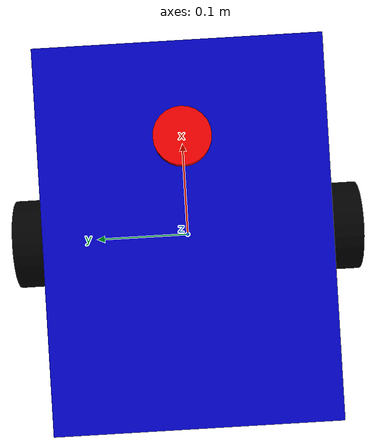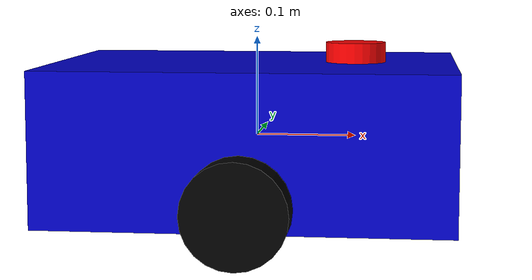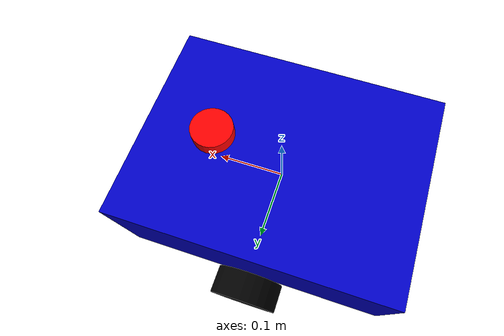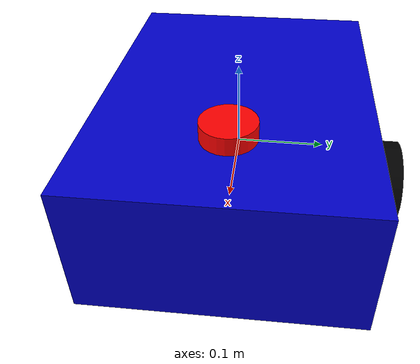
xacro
<?xml version="1.0"?>
<robot name="box_bot" xmlns:xacro="http://www.ros.org/wiki/xacro">
  <xacro:include filename="inertial_macros.xacro"/>
  <xacro:include filename="lidar.xacro"/>

  <link name="base_link"/>

  <joint name="chassis_joint" type="fixed">
    <parent link="base_link"/>
    <child link="chassis"/>
    <origin xyz="0 0 0" rpy="0 0 0"/>
  </joint>

  <link name="chassis">
    <visual>
      <geometry><box size="0.4 0.3 0.15"/></geometry>
      <material name="blue"><color rgba="0 0 0.8 1"/></material>
    </visual>
    <collision>
      <geometry><box size="0.4 0.3 0.15"/></geometry>
    </collision>
    <xacro:inertial_box mass="1.0" x="0.4" y="0.3" z="0.15">
      <origin xyz="0 0 0" rpy="0 0 0"/>
    </xacro:inertial_box>
  </link>

  <link name="left_wheel">
    <visual>
      <geometry><cylinder radius="0.05" length="0.04"/></geometry>
      <material name="black"><color rgba="0 0 0 1"/></material>
    </visual>
    <collision>
      <geometry><cylinder radius="0.05" length="0.04"/></geometry>
    </collision>
    <xacro:inertial_cylinder mass="0.1" length="0.04" radius="0.05">
      <origin xyz="0 0 0" rpy="0 0 0"/>
    </xacro:inertial_cylinder>
  </link>

  <joint name="left_wheel_joint" type="continuous">
    <parent link="chassis"/>
    <child link="left_wheel"/>
    <origin xyz="0 0.175 -0.05" rpy="-1.5708 0 0"/>
    <axis xyz="0 0 1"/>
  </joint>

  <link name="right_wheel">
    <visual>
      <geometry><cylinder radius="0.05" length="0.04"/></geometry>
      <material name="black"><color rgba="0 0 0 1"/></material>
    </visual>
    <collision>
      <geometry><cylinder radius="0.05" length="0.04"/></geometry>
    </collision>
    <xacro:inertial_cylinder mass="0.1" length="0.04" radius="0.05">
      <origin xyz="0 0 0" rpy="0 0 0"/>
    </xacro:inertial_cylinder>
  </link>

  <joint name="right_wheel_joint" type="continuous">
    <parent link="chassis"/>
    <child link="right_wheel"/>
    <origin xyz="0 -0.175 -0.05" rpy="1.5708 0 0"/>
    <axis xyz="0 0 -1"/>
  </joint>

  <link name="caster">
    <visual>
      <geometry><sphere radius="0.05"/></geometry>
    </visual>
    <collision>
      <geometry><sphere radius="0.05"/></geometry>
    </collision>
    <xacro:inertial_sphere mass="0.1" radius="0.05">
      <origin xyz="0 0 0" rpy="0 0 0"/>
    </xacro:inertial_sphere>
  </link>

  <joint name="caster_joint" type="fixed">
    <parent link="chassis"/>
    <child link="caster"/>
    <origin xyz="0.15 0 -0.05"/>
  </joint>

  <gazebo>
    <plugin filename="gz-sim-diff-drive-system" name="gz::sim::systems::DiffDrive">
      <left_joint>left_wheel_joint</left_joint>
      <right_joint>right_wheel_joint</right_joint>
      <wheel_separation>0.35</wheel_separation>
      <wheel_radius>0.05</wheel_radius>
      <topic>cmd_vel</topic>
      <odom_topic>odom</odom_topic>
      <frame_id>odom</frame_id>
      <child_frame_id>base_link</child_frame_id>
    </plugin>
    <plugin filename="gz-sim-joint-state-publisher-system" name="gz::sim::systems::JointStatePublisher">
    </plugin>
  </gazebo>

</robot>

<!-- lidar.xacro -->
<robot xmlns:xacro="http://www.ros.org/wiki/xacro" >

    <joint name="laser_joint" type="fixed">
        <parent link="chassis"/>
        <child link="laser_frame"/>
        <origin xyz="0.1 0 0.085" rpy="0 0 0"/>
    </joint>

    <link name="laser_frame">
        <visual>
            <geometry>
                <cylinder radius="0.03" length="0.02"/>
            </geometry>
            <material name="red">
                <color rgba="1 0 0 1"/>
            </material>
        </visual>
        <collision>
            <geometry>
                <cylinder radius="0.03" length="0.02"/>
            </geometry>
        </collision>
        <xacro:inertial_cylinder mass="0.2" length="0.02" radius="0.03">
            <origin xyz="0 0 0" rpy="0 0 0"/>
        </xacro:inertial_cylinder>
    </link>
    <gazebo reference="laser_frame">
        <sensor name="laser" type="gpu_lidar">
            <pose>0 0 0 0 0 0</pose>
            <visualize>true</visualize>
            <update_rate>10</update_rate>
            <lidar>
                <scan>
                    <horizontal>
                        <samples>360</samples>
                        <resolution>1</resolution>
                        <min_angle>-3.14159</min_angle>
                        <max_angle>3.14159</max_angle>
                    </horizontal>
                </scan>
                <range>
                    <min>0.3</min>
                    <max>12</max>
                    <resolution>0.01</resolution>
                </range>
            </lidar>
            <topic>scan</topic>
        </sensor>
    </gazebo>
</robot>
